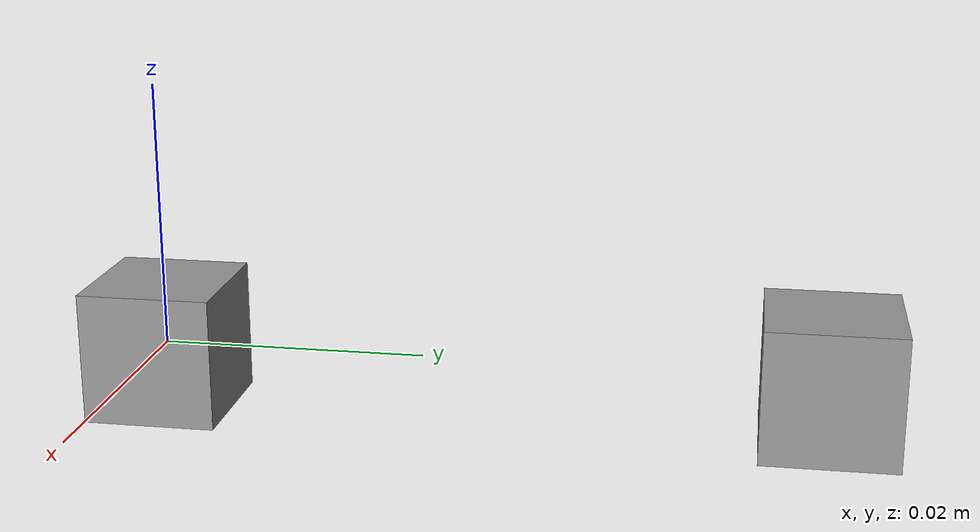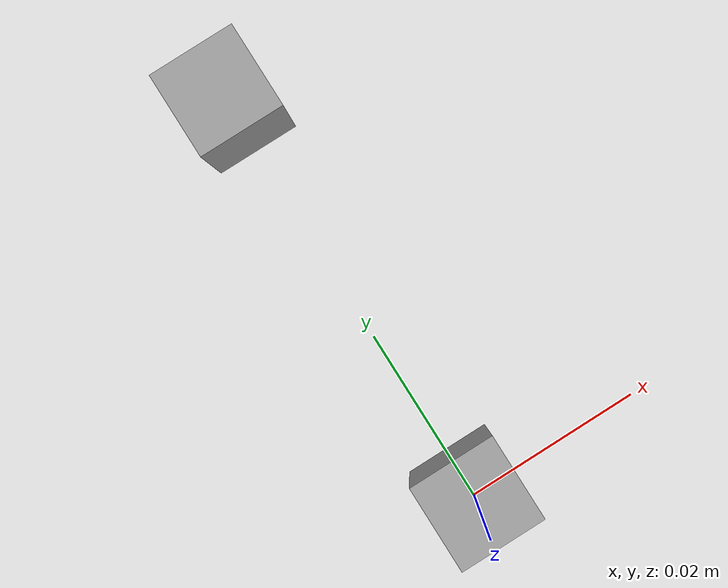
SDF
<?xml version='1.0'?>
<sdf version='1.7'>
  <model name='camera_model'>
    <link name='camera_link'>
      <inertial>
        <mass>0.000312342</mass>
        <inertia>
          <ixx>2.59945e-07</ixx>
          <ixy>0</ixy>
          <ixz>0</ixz>
          <iyy>2.1907e-07</iyy>
          <iyz>0</iyz>
          <izz>2.46955e-07</izz>
        </inertia>
        <pose>0 0 0 0 -0 0</pose>
      </inertial>
      <visual name='visual'>
        <pose>0 0 0 0 -0 0</pose>
        <geometry>
          <box>
            <size>0.01 0.01 0.01</size>
          </box>
        </geometry>
        <material>
          <lighting>1</lighting>
          <script>
            <uri>file://media/materials/scripts/gazebo.material</uri>
            <name>Gazebo/Grey</name>
          </script>
          <shader type='pixel'/>
        </material>
        <transparency>0</transparency>
        <cast_shadows>1</cast_shadows>
      </visual>
      <collision name='collision'>
        <laser_retro>0</laser_retro>
        <max_contacts>10</max_contacts>
        <pose>0 0 0 0 -0 0</pose>
        <geometry>
          <box>
            <size>0.01 0.01 0.01</size>
          </box>
        </geometry>
        <surface>
          <friction>
            <ode>
              <mu>1</mu>
              <mu2>1</mu2>
              <fdir1>0 0 0</fdir1>
              <slip1>0</slip1>
              <slip2>0</slip2>
            </ode>
            <torsional>
              <coefficient>1</coefficient>
              <patch_radius>0</patch_radius>
              <surface_radius>0</surface_radius>
              <use_patch_radius>1</use_patch_radius>
              <ode>
                <slip>0</slip>
              </ode>
            </torsional>
          </friction>
          <bounce>
            <restitution_coefficient>0</restitution_coefficient>
            <threshold>1e+06</threshold>
          </bounce>
          <contact>
            <collide_without_contact>0</collide_without_contact>
            <collide_without_contact_bitmask>1</collide_without_contact_bitmask>
            <collide_bitmask>1</collide_bitmask>
            <ode>
              <soft_cfm>0</soft_cfm>
              <soft_erp>0.2</soft_erp>
              <kp>1e+13</kp>
              <kd>1</kd>
              <max_vel>0.01</max_vel>
              <min_depth>0</min_depth>
            </ode>
            <bullet>
              <split_impulse>1</split_impulse>
              <split_impulse_penetration_threshold>-0.01</split_impulse_penetration_threshold>
              <soft_cfm>0</soft_cfm>
              <soft_erp>0.2</soft_erp>
              <kp>1e+13</kp>
              <kd>1</kd>
            </bullet>
          </contact>
        </surface>
      </collision>
    <sensor name='camera' type='camera'>
        <camera name="head">
            <horizontal_fov>1.3962634</horizontal_fov>
            <image>
                <width>800</width>
                <height>800</height>
                <format>R8G8B8</format>
            </image>
            <clip>
                <near>0.02</near>
                <far>300</far>
            </clip>
        </camera>
        <always_on>1</always_on>
        <update_rate>30</update_rate>
        <visualize>1</visualize>
        <plugin name="camera_controller" filename="libgazebo_ros_camera.so">
            <alwaysOn>true</alwaysOn>
            <updateRate>0.0</updateRate>
            <cameraName>jlr/camera</cameraName>
            <imageTopicName>image_raw</imageTopicName>
            <cameraInfoTopicName>camera_info</cameraInfoTopicName>
            <frameName>camera_link</frameName>
            <hackBaseline>0.07</hackBaseline>
            <distortionK1>0.0</distortionK1>
            <distortionK2>0.0</distortionK2>
            <distortionK3>0.0</distortionK3>
            <distortionT1>0.0</distortionT1>
            <distortionT2>0.0</distortionT2>
        </plugin>
    </sensor>
    </link>
    <joint name='link_0_JOINT_0' type='fixed'>
      <parent>camera_link</parent>
      <child>camera_link1</child>
      <pose>0 0.025 0 0 -0 0</pose>
      <physics>
        <ode>
          <limit>
            <cfm>0</cfm>
            <erp>0.2</erp>
          </limit>
          <suspension>
            <cfm>0</cfm>
            <erp>0.2</erp>
          </suspension>
        </ode>
      </physics>
    </joint>
    <link name='camera_link1'>
      <inertial>
        <mass>0.000312342</mass>
        <inertia>
          <ixx>2.59945e-07</ixx>
          <ixy>0</ixy>
          <ixz>0</ixz>
          <iyy>2.1907e-07</iyy>
          <iyz>0</iyz>
          <izz>2.46955e-07</izz>
        </inertia>
        <pose>0 0.025 0 0 -0 0</pose>
      </inertial>
      <pose>-0 0.025 0 0 -0 0</pose>
      <visual name='visual'>
        <pose>0 0.025 0 0 -0 0</pose>
        <geometry>
          <box>
            <size>0.01 0.01 0.01</size>
          </box>
        </geometry>
        <material>
          <lighting>1</lighting>
          <script>
            <uri>file://media/materials/scripts/gazebo.material</uri>
            <name>Gazebo/Grey</name>
          </script>
          <shader type='pixel'/>
        </material>
        <transparency>0</transparency>
        <cast_shadows>1</cast_shadows>
      </visual>
      <collision name='collision'>
        <laser_retro>0</laser_retro>
        <max_contacts>10</max_contacts>
        <pose>0 0.025 0 0 -0 0</pose>
        <geometry>
          <box>
            <size>0.01 0.01 0.01</size>
          </box>
        </geometry>
        <surface>
          <friction>
            <ode>
              <mu>1</mu>
              <mu2>1</mu2>
              <fdir1>0 0 0</fdir1>
              <slip1>0</slip1>
              <slip2>0</slip2>
            </ode>
            <torsional>
              <coefficient>1</coefficient>
              <patch_radius>0</patch_radius>
              <surface_radius>0</surface_radius>
              <use_patch_radius>1</use_patch_radius>
              <ode>
                <slip>0</slip>
              </ode>
            </torsional>
          </friction>
          <bounce>
            <restitution_coefficient>0</restitution_coefficient>
            <threshold>1e+06</threshold>
          </bounce>
          <contact>
            <collide_without_contact>0</collide_without_contact>
            <collide_without_contact_bitmask>1</collide_without_contact_bitmask>
            <collide_bitmask>1</collide_bitmask>
            <ode>
              <soft_cfm>0</soft_cfm>
              <soft_erp>0.2</soft_erp>
              <kp>1e+13</kp>
              <kd>1</kd>
              <max_vel>0.01</max_vel>
              <min_depth>0</min_depth>
            </ode>
            <bullet>
              <split_impulse>1</split_impulse>
              <split_impulse_penetration_threshold>-0.01</split_impulse_penetration_threshold>
              <soft_cfm>0</soft_cfm>
              <soft_erp>0.2</soft_erp>
              <kp>1e+13</kp>
              <kd>1</kd>
            </bullet>
          </contact>
        </surface>
      </collision>
    <sensor name='camera1' type='camera'>
        <camera name="head1">
            <horizontal_fov>1.3962634</horizontal_fov>
            <image>
                <width>800</width>
                <height>800</height>
                <format>R8G8B8</format>
            </image>
            <clip>
                <near>0.02</near>
                <far>300</far>
            </clip>
        </camera>
        <always_on>1</always_on>
        <update_rate>30</update_rate>
        <visualize>1</visualize>
        <plugin name="camera_controller" filename="libgazebo_ros_camera.so">
            <alwaysOn>true</alwaysOn>
            <updateRate>0.0</updateRate>
            <cameraName>jlr/camera1</cameraName>
            <imageTopicName>image_raw</imageTopicName>
            <cameraInfoTopicName>camera_info</cameraInfoTopicName>
            <frameName>camera_link1</frameName>
            <hackBaseline>0.07</hackBaseline>
            <distortionK1>0.0</distortionK1>
            <distortionK2>0.0</distortionK2>
            <distortionK3>0.0</distortionK3>
            <distortionT1>0.0</distortionT1>
            <distortionT2>0.0</distortionT2>
        </plugin>
    </sensor>
    </link>
    <self_collide>0</self_collide>
    <kinematic>0</kinematic>
    <static>0</static>
    <allow_auto_disable>1</allow_auto_disable>
  </model>
</sdf>
